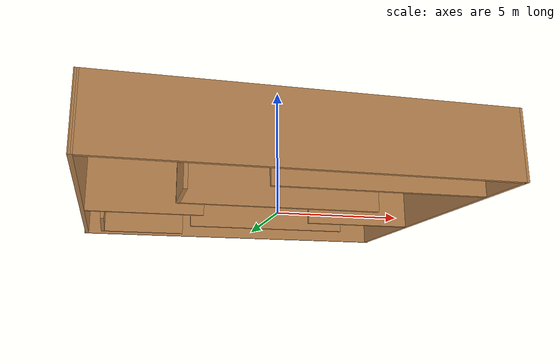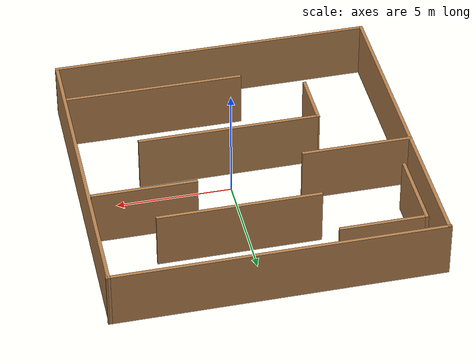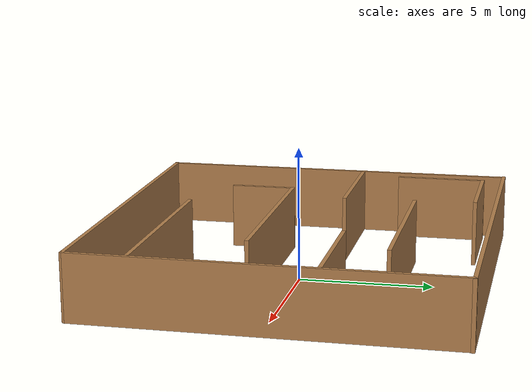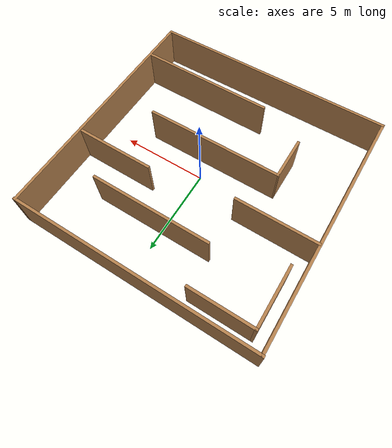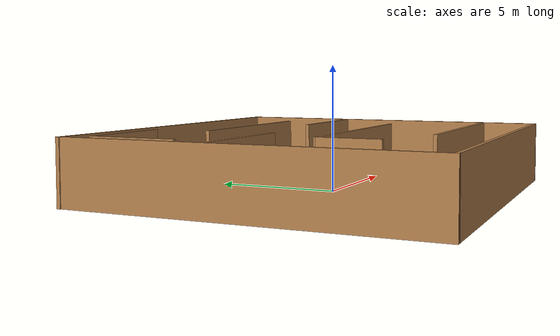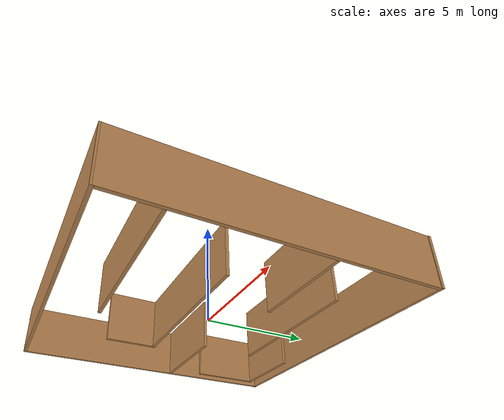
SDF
<?xml version='1.0'?>
<sdf version='1.7'>
  <model name='proj2'>
    <pose>-0.505996 0.058305 0 0 -0 0</pose>
    <link name='Wall_0'>
      <collision name='Wall_0_Collision'>
        <geometry>
          <box>
            <size>14.0306 0.15 2.5</size>
          </box>
        </geometry>
        <pose>0 0 1.25 0 -0 0</pose>
      </collision>
      <visual name='Wall_0_Visual'>
        <pose>0 0 1.25 0 -0 0</pose>
        <geometry>
          <box>
            <size>14.0306 0.15 2.5</size>
          </box>
        </geometry>
        <material>
          <script>
            <uri>file://media/materials/scripts/gazebo.material</uri>
            <name>Gazebo/Wood</name>
          </script>
          <ambient>1 1 1 1</ambient>
        </material>
        <meta>
          <layer>0</layer>
        </meta>
      </visual>
      <pose>-7.01292 -0.015459 0 0 -0 -1.5708</pose>
    </link>
    <link name='Wall_11'>
      <collision name='Wall_11_Collision'>
        <geometry>
          <box>
            <size>4.5 0.15 2.5</size>
          </box>
        </geometry>
        <pose>0 0 1.25 0 -0 0</pose>
      </collision>
      <visual name='Wall_11_Visual'>
        <pose>0 0 1.25 0 -0 0</pose>
        <geometry>
          <box>
            <size>4.5 0.15 2.5</size>
          </box>
        </geometry>
        <material>
          <script>
            <uri>file://media/materials/scripts/gazebo.material</uri>
            <name>Gazebo/Wood</name>
          </script>
          <ambient>1 1 1 1</ambient>
        </material>
        <meta>
          <layer>0</layer>
        </meta>
      </visual>
      <pose>4.62264 1.9441 0 0 -0 0</pose>
    </link>
    <link name='Wall_13'>
      <collision name='Wall_13_Collision'>
        <geometry>
          <box>
            <size>4.75 0.15 2.5</size>
          </box>
        </geometry>
        <pose>0 0 1.25 0 -0 0</pose>
      </collision>
      <visual name='Wall_13_Visual'>
        <pose>0 0 1.25 0 -0 0</pose>
        <geometry>
          <box>
            <size>4.75 0.15 2.5</size>
          </box>
        </geometry>
        <material>
          <script>
            <uri>file://media/materials/scripts/gazebo.material</uri>
            <name>Gazebo/Wood</name>
          </script>
          <ambient>1 1 1 1</ambient>
        </material>
        <meta>
          <layer>0</layer>
        </meta>
      </visual>
      <pose>-4.65833 1.15325 0 0 -0 3.14159</pose>
    </link>
    <link name='Wall_15'>
      <collision name='Wall_15_Collision'>
        <geometry>
          <box>
            <size>2.5 0.15 2.5</size>
          </box>
        </geometry>
        <pose>0 0 1.25 0 -0 0</pose>
      </collision>
      <visual name='Wall_15_Visual'>
        <pose>0 0 1.25 0 -0 0</pose>
        <geometry>
          <box>
            <size>2.5 0.15 2.5</size>
          </box>
        </geometry>
        <material>
          <script>
            <uri>file://media/materials/scripts/gazebo.material</uri>
            <name>Gazebo/Wood</name>
          </script>
          <ambient>1 1 1 1</ambient>
        </material>
        <meta>
          <layer>0</layer>
        </meta>
      </visual>
      <pose>-3.54461 -2.33348 0 0 -0 -1.5708</pose>
    </link>
    <link name='Wall_17'>
      <collision name='Wall_17_Collision'>
        <geometry>
          <box>
            <size>7.93694 0.15 2.5</size>
          </box>
        </geometry>
        <pose>0 0 1.25 0 -0 0</pose>
      </collision>
      <visual name='Wall_17_Visual'>
        <pose>0 0 1.25 0 -0 0</pose>
        <geometry>
          <box>
            <size>7.93694 0.15 2.5</size>
          </box>
        </geometry>
        <material>
          <script>
            <uri>file://media/materials/scripts/gazebo.material</uri>
            <name>Gazebo/Wood</name>
          </script>
          <ambient>1 1 1 1</ambient>
        </material>
        <meta>
          <layer>0</layer>
        </meta>
      </visual>
      <pose>0.348829 -1.14327 0 0 -0 -3.13769</pose>
    </link>
    <link name='Wall_19'>
      <collision name='Wall_19_Collision'>
        <geometry>
          <box>
            <size>7.75 0.15 2.5</size>
          </box>
        </geometry>
        <pose>0 0 1.25 0 -0 0</pose>
      </collision>
      <visual name='Wall_19_Visual'>
        <pose>0 0 1.25 0 -0 0</pose>
        <geometry>
          <box>
            <size>7.75 0.15 2.5</size>
          </box>
        </geometry>
        <material>
          <script>
            <uri>file://media/materials/scripts/gazebo.material</uri>
            <name>Gazebo/Wood</name>
          </script>
          <ambient>1 1 1 1</ambient>
        </material>
        <meta>
          <layer>0</layer>
        </meta>
      </visual>
      <pose>2.96255 -4.62608 0 0 -0 0</pose>
    </link>
    <link name='Wall_22'>
      <collision name='Wall_22_Collision'>
        <geometry>
          <box>
            <size>3.5 0.15 2.5</size>
          </box>
        </geometry>
        <pose>0 0 1.25 0 -0 0</pose>
      </collision>
      <visual name='Wall_22_Visual'>
        <pose>0 0 1.25 0 -0 0</pose>
        <geometry>
          <box>
            <size>3.5 0.15 2.5</size>
          </box>
        </geometry>
        <material>
          <script>
            <uri>file://media/materials/scripts/gazebo.material</uri>
            <name>Gazebo/Wood</name>
          </script>
          <ambient>1 1 1 1</ambient>
        </material>
        <meta>
          <layer>0</layer>
        </meta>
      </visual>
      <pose>-6.28669 4.47871 0 0 -0 1.5708</pose>
    </link>
    <link name='Wall_23'>
      <collision name='Wall_23_Collision'>
        <geometry>
          <box>
            <size>3.75 0.15 2.5</size>
          </box>
        </geometry>
        <pose>0 0 1.25 0 -0 0</pose>
      </collision>
      <visual name='Wall_23_Visual'>
        <pose>0 0 1.25 0 -0 0</pose>
        <geometry>
          <box>
            <size>3.75 0.15 2.5</size>
          </box>
        </geometry>
        <material>
          <script>
            <uri>file://media/materials/scripts/gazebo.material</uri>
            <name>Gazebo/Wood</name>
          </script>
          <ambient>1 1 1 1</ambient>
        </material>
        <meta>
          <layer>0</layer>
        </meta>
      </visual>
      <pose>-4.48669 6.15371 0 0 -0 0</pose>
    </link>
    <link name='Wall_3'>
      <collision name='Wall_3_Collision'>
        <geometry>
          <box>
            <size>14.0307 0.15 2.5</size>
          </box>
        </geometry>
        <pose>0 0 1.25 0 -0 0</pose>
      </collision>
      <visual name='Wall_3_Visual'>
        <pose>0 0 1.25 0 -0 0</pose>
        <geometry>
          <box>
            <size>14.0307 0.15 2.5</size>
          </box>
        </geometry>
        <material>
          <script>
            <uri>file://media/materials/scripts/gazebo.material</uri>
            <name>Gazebo/Wood</name>
          </script>
          <ambient>1 1 1 1</ambient>
        </material>
        <meta>
          <layer>0</layer>
        </meta>
      </visual>
      <pose>-0.042297 -6.91004 0 0 -0 0.006574</pose>
    </link>
    <link name='Wall_6'>
      <collision name='Wall_6_Collision'>
        <geometry>
          <box>
            <size>13.9708 0.15 2.5</size>
          </box>
        </geometry>
        <pose>0 0 1.25 0 -0 0</pose>
      </collision>
      <visual name='Wall_6_Visual'>
        <pose>0 0 1.25 0 -0 0</pose>
        <geometry>
          <box>
            <size>13.9708 0.15 2.5</size>
          </box>
        </geometry>
        <material>
          <script>
            <uri>file://media/materials/scripts/gazebo.material</uri>
            <name>Gazebo/Wood</name>
          </script>
          <ambient>1 1 1 1</ambient>
        </material>
        <meta>
          <layer>0</layer>
        </meta>
      </visual>
      <pose>6.95875 0.045376 0 0 -0 1.56199</pose>
    </link>
    <link name='Wall_7'>
      <collision name='Wall_7_Collision'>
        <geometry>
          <box>
            <size>14.25 0.15 2.5</size>
          </box>
        </geometry>
        <pose>0 0 1.25 0 -0 0</pose>
      </collision>
      <visual name='Wall_7_Visual'>
        <pose>0 0 1.25 0 -0 0</pose>
        <geometry>
          <box>
            <size>14.25 0.15 2.5</size>
          </box>
        </geometry>
        <material>
          <script>
            <uri>file://media/materials/scripts/gazebo.material</uri>
            <name>Gazebo/Wood</name>
          </script>
          <ambient>1 1 1 1</ambient>
        </material>
        <meta>
          <layer>0</layer>
        </meta>
      </visual>
      <pose>-0 6.95517 0 0 -0 3.14159</pose>
    </link>
    <link name='Wall_9'>
      <collision name='Wall_9_Collision'>
        <geometry>
          <box>
            <size>7 0.15 2.5</size>
          </box>
        </geometry>
        <pose>0 0 1.25 0 -0 0</pose>
      </collision>
      <visual name='Wall_9_Visual'>
        <pose>0 0 1.25 0 -0 0</pose>
        <geometry>
          <box>
            <size>7 0.15 2.5</size>
          </box>
        </geometry>
        <material>
          <script>
            <uri>file://media/materials/scripts/gazebo.material</uri>
            <name>Gazebo/Wood</name>
          </script>
          <ambient>1 1 1 1</ambient>
        </material>
        <meta>
          <layer>0</layer>
        </meta>
      </visual>
      <pose>1.00584 3.86041 0 0 -0 0</pose>
    </link>
    <static>1</static>
  </model>
</sdf>
